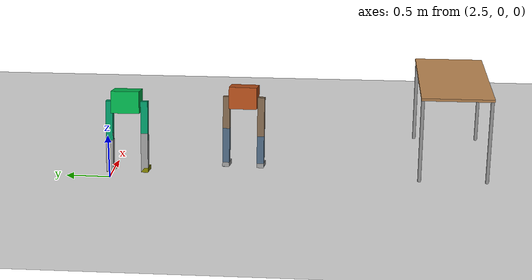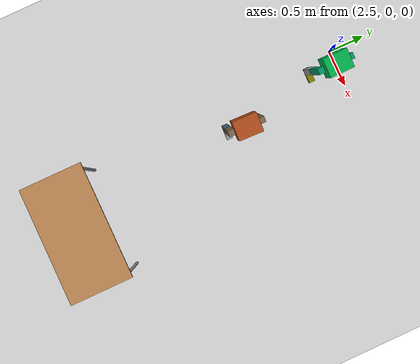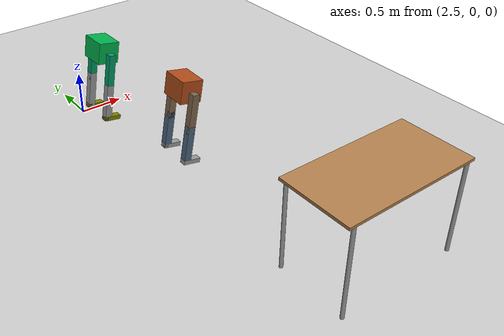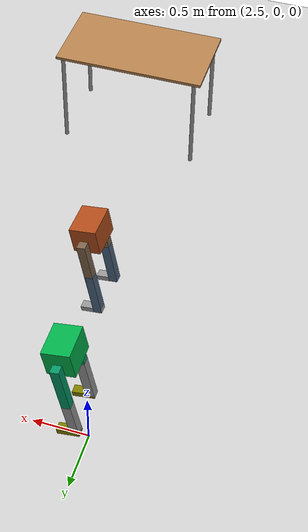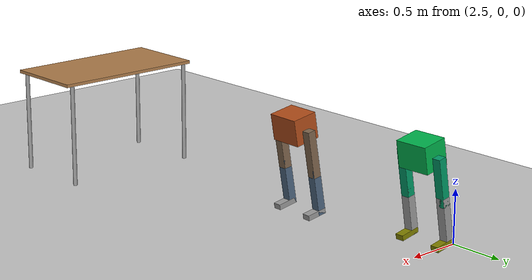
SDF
<sdf version="1.6">
 <world name="default">
  <model name="ground_plane">
   <static>1</static>
   <link name="link">
    <collision name="collision">
     <geometry><plane><normal>0 0 1</normal><size>100 100</size></plane></geometry>
     <surface><friction><ode><mu>100</mu><mu2>50</mu2></ode></friction></surface>
    </collision>
    <visual name="visual">
     <cast_shadows>0</cast_shadows>
     <geometry><plane><normal>0 0 1</normal><size>100 100</size></plane></geometry>
     <material>
      <script><uri>file://media/materials/scripts/gazebo.material</uri><name>Gazebo/Grey</name></script>
     </material>
    </visual>
   </link>
  </model>
  <model name="table">
   <static>1</static>
   <link name="link">
    <collision name="surface">
     <pose>0 0 1 0 -0 0</pose>
     <geometry><box><size>1.5 0.8 0.03</size></box></geometry>
     <surface><friction><ode><mu>0.6</mu><mu2>0.6</mu2></ode></friction></surface>
    </collision>
    <visual name="visual1">
     <pose>0 0 1 0 -0 0</pose>
     <geometry><box><size>1.5 0.8 0.03</size></box></geometry>
     <material>
      <script><uri>file://media/materials/scripts/gazebo.material</uri><name>Gazebo/Wood</name></script>
     </material>
    </visual>
    <collision name="front_left_leg">
     <pose>0.68 0.38 0.5 0 -0 0</pose>
     <geometry><cylinder><radius>0.02</radius><length>1</length></cylinder></geometry>
    </collision>
    <visual name="front_left_leg">
     <pose>0.68 0.38 0.5 0 -0 0</pose>
     <geometry><cylinder><radius>0.02</radius><length>1</length></cylinder></geometry>
     <material>
      <script><uri>file://media/materials/scripts/gazebo.material</uri><name>Gazebo/Grey</name></script>
     </material>
    </visual>
    <collision name="front_right_leg">
     <pose>0.68 -0.38 0.5 0 -0 0</pose>
     <geometry><cylinder><radius>0.02</radius><length>1</length></cylinder></geometry>
    </collision>
    <visual name="front_right_leg">
     <pose>0.68 -0.38 0.5 0 -0 0</pose>
     <geometry><cylinder><radius>0.02</radius><length>1</length></cylinder></geometry>
     <material>
      <script><uri>file://media/materials/scripts/gazebo.material</uri><name>Gazebo/Grey</name></script>
     </material>
    </visual>
    <collision name="back_right_leg">
     <pose>-0.68 -0.38 0.5 0 -0 0</pose>
     <geometry><cylinder><radius>0.02</radius><length>1</length></cylinder></geometry>
    </collision>
    <visual name="back_right_leg">
     <pose>-0.68 -0.38 0.5 0 -0 0</pose>
     <geometry><cylinder><radius>0.02</radius><length>1</length></cylinder></geometry>
     <material>
      <script><uri>file://media/materials/scripts/gazebo.material</uri><name>Gazebo/Grey</name></script>
     </material>
    </visual>
    <collision name="back_left_leg">
     <pose>-0.68 0.38 0.5 0 -0 0</pose>
     <geometry><cylinder><radius>0.02</radius><length>1</length></cylinder></geometry>
    </collision>
    <visual name="back_left_leg">
     <pose>-0.68 0.38 0.5 0 -0 0</pose>
     <geometry><cylinder><radius>0.02</radius><length>1</length></cylinder></geometry>
     <material>
      <script><uri>file://media/materials/scripts/gazebo.material</uri><name>Gazebo/Grey</name></script>
     </material>
    </visual>
   </link>
   <pose>3.30366 -3.89414 0 0 -0 0</pose>
  </model>
  <model name="humanoid">
   <link name="link_0">
    <pose>0.043928 -0.199999 -0.333571 0 -0 0</pose>
    <inertial>
     <mass>1</mass>
     <inertia>
      <ixx>0.166667</ixx>
      <ixy>0</ixy>
      <ixz>0</ixz>
      <iyy>0.166667</iyy>
      <iyz>0</iyz>
      <izz>0.166667</izz>
     </inertia>
    </inertial>
    <visual name="visual">
     <geometry><box><size>0.2 0.08 0.05</size></box></geometry>
     <material>
      <lighting>1</lighting>
      <script><uri>file://media/materials/scripts/gazebo.material</uri><name>Gazebo/Grey</name></script>
      <ambient>0.3 0.3 0.3 1</ambient>
      <diffuse>0.7 0.7 0.7 1</diffuse>
      <specular>0.01 0.01 0.01 1</specular>
      <emissive>0 0 0 1</emissive>
      <shader type="vertex"><normal_map>__default__</normal_map></shader>
     </material>
    </visual>
    <collision name="collision">
     <geometry><box><size>0.2 0.08 0.05</size></box></geometry>
     <surface>
      <friction>
       <ode><mu>1</mu><mu2>1</mu2><fdir1>0 0 0</fdir1><slip1>0</slip1><slip2>0</slip2></ode>
       <torsional>
        <coefficient>1</coefficient>
        <patch_radius>0</patch_radius>
        <surface_radius>0</surface_radius>
        <use_patch_radius>1</use_patch_radius>
        <ode><slip>0</slip></ode>
       </torsional>
      </friction>
      <bounce><restitution_coefficient>0</restitution_coefficient><threshold>1e+06</threshold></bounce>
      <contact>
       <collide_without_contact>0</collide_without_contact>
       <collide_without_contact_bitmask>1</collide_without_contact_bitmask>
       <collide_bitmask>1</collide_bitmask>
       <ode>
        <soft_cfm>0</soft_cfm>
        <soft_erp>0.2</soft_erp>
        <kp>1e+13</kp>
        <kd>1</kd>
        <max_vel>0.01</max_vel>
        <min_depth>0</min_depth>
       </ode>
       <bullet>
        <split_impulse>1</split_impulse>
        <split_impulse_penetration_threshold>-0.01</split_impulse_penetration_threshold>
        <soft_cfm>0</soft_cfm>
        <soft_erp>0.2</soft_erp>
        <kp>1e+13</kp>
        <kd>1</kd>
       </bullet>
      </contact>
     </surface>
    </collision>
   </link>
   <link name="link_0_clone">
    <pose>0.043928 0.200001 -0.333571 0 -0 0</pose>
    <inertial>
     <mass>1</mass>
     <inertia>
      <ixx>0.166667</ixx>
      <ixy>0</ixy>
      <ixz>0</ixz>
      <iyy>0.166667</iyy>
      <iyz>0</iyz>
      <izz>0.166667</izz>
     </inertia>
    </inertial>
    <visual name="visual">
     <geometry><box><size>0.2 0.08 0.05</size></box></geometry>
     <material>
      <lighting>1</lighting>
      <script><uri>file://media/materials/scripts/gazebo.material</uri><name>Gazebo/Grey</name></script>
      <ambient>0.3 0.3 0.3 1</ambient>
      <diffuse>0.7 0.7 0.7 1</diffuse>
      <specular>0.01 0.01 0.01 1</specular>
      <emissive>0 0 0 1</emissive>
      <shader type="vertex"><normal_map>__default__</normal_map></shader>
     </material>
    </visual>
    <collision name="collision">
     <geometry><box><size>0.2 0.08 0.05</size></box></geometry>
     <surface>
      <friction>
       <ode><mu>1</mu><mu2>1</mu2><fdir1>0 0 0</fdir1><slip1>0</slip1><slip2>0</slip2></ode>
       <torsional>
        <coefficient>1</coefficient>
        <patch_radius>0</patch_radius>
        <surface_radius>0</surface_radius>
        <use_patch_radius>1</use_patch_radius>
        <ode><slip>0</slip></ode>
       </torsional>
      </friction>
      <bounce><restitution_coefficient>0</restitution_coefficient><threshold>1e+06</threshold></bounce>
      <contact>
       <collide_without_contact>0</collide_without_contact>
       <collide_without_contact_bitmask>1</collide_without_contact_bitmask>
       <collide_bitmask>1</collide_bitmask>
       <ode>
        <soft_cfm>0</soft_cfm>
        <soft_erp>0.2</soft_erp>
        <kp>1e+13</kp>
        <kd>1</kd>
        <max_vel>0.01</max_vel>
        <min_depth>0</min_depth>
       </ode>
       <bullet>
        <split_impulse>1</split_impulse>
        <split_impulse_penetration_threshold>-0.01</split_impulse_penetration_threshold>
        <soft_cfm>0</soft_cfm>
        <soft_erp>0.2</soft_erp>
        <kp>1e+13</kp>
        <kd>1</kd>
       </bullet>
      </contact>
     </surface>
    </collision>
   </link>
   <link name="link_0_clone_0">
    <pose>-0.016072 -0.199999 -0.133571 0 -0 0</pose>
    <inertial>
     <mass>1</mass>
     <inertia>
      <ixx>0.166667</ixx>
      <ixy>0</ixy>
      <ixz>0</ixz>
      <iyy>0.166667</iyy>
      <iyz>0</iyz>
      <izz>0.166667</izz>
     </inertia>
    </inertial>
    <visual name="visual">
     <geometry><box><size>0.08 0.08 0.45</size></box></geometry>
     <material>
      <lighting>1</lighting>
      <script><uri>file://media/materials/scripts/gazebo.material</uri><name>Gazebo/Grey</name></script>
      <ambient>0.3 0.4 0.5 1</ambient>
      <diffuse>0.7 0.7 0.7 1</diffuse>
      <specular>0.01 0.01 0.01 1</specular>
      <emissive>0 0 0 1</emissive>
      <shader type="vertex"><normal_map>__default__</normal_map></shader>
     </material>
    </visual>
    <collision name="collision">
     <geometry><box><size>0.08 0.08 0.45</size></box></geometry>
     <surface>
      <friction>
       <ode><mu>1</mu><mu2>1</mu2><fdir1>0 0 0</fdir1><slip1>0</slip1><slip2>0</slip2></ode>
       <torsional>
        <coefficient>1</coefficient>
        <patch_radius>0</patch_radius>
        <surface_radius>0</surface_radius>
        <use_patch_radius>1</use_patch_radius>
        <ode><slip>0</slip></ode>
       </torsional>
      </friction>
      <bounce><restitution_coefficient>0</restitution_coefficient><threshold>1e+06</threshold></bounce>
      <contact>
       <collide_without_contact>0</collide_without_contact>
       <collide_without_contact_bitmask>1</collide_without_contact_bitmask>
       <collide_bitmask>1</collide_bitmask>
       <ode>
        <soft_cfm>0</soft_cfm>
        <soft_erp>0.2</soft_erp>
        <kp>1e+13</kp>
        <kd>1</kd>
        <max_vel>0.01</max_vel>
        <min_depth>0</min_depth>
       </ode>
       <bullet>
        <split_impulse>1</split_impulse>
        <split_impulse_penetration_threshold>-0.01</split_impulse_penetration_threshold>
        <soft_cfm>0</soft_cfm>
        <soft_erp>0.2</soft_erp>
        <kp>1e+13</kp>
        <kd>1</kd>
       </bullet>
      </contact>
     </surface>
    </collision>
   </link>
   <link name="link_0_clone_0_clone">
    <pose>-0.016072 0.200001 -0.133571 0 -0 0</pose>
    <inertial>
     <mass>1</mass>
     <inertia>
      <ixx>0.166667</ixx>
      <ixy>0</ixy>
      <ixz>0</ixz>
      <iyy>0.166667</iyy>
      <iyz>0</iyz>
      <izz>0.166667</izz>
     </inertia>
    </inertial>
    <visual name="visual">
     <geometry><box><size>0.08 0.08 0.45</size></box></geometry>
     <material>
      <lighting>1</lighting>
      <script><uri>file://media/materials/scripts/gazebo.material</uri><name>Gazebo/Grey</name></script>
      <ambient>0.3 0.4 0.5 1</ambient>
      <diffuse>0.7 0.7 0.7 1</diffuse>
      <specular>0.01 0.01 0.01 1</specular>
      <emissive>0 0 0 1</emissive>
      <shader type="vertex"><normal_map>__default__</normal_map></shader>
     </material>
    </visual>
    <collision name="collision">
     <geometry><box><size>0.08 0.08 0.45</size></box></geometry>
     <surface>
      <friction>
       <ode><mu>1</mu><mu2>1</mu2><fdir1>0 0 0</fdir1><slip1>0</slip1><slip2>0</slip2></ode>
       <torsional>
        <coefficient>1</coefficient>
        <patch_radius>0</patch_radius>
        <surface_radius>0</surface_radius>
        <use_patch_radius>1</use_patch_radius>
        <ode><slip>0</slip></ode>
       </torsional>
      </friction>
      <bounce><restitution_coefficient>0</restitution_coefficient><threshold>1e+06</threshold></bounce>
      <contact>
       <collide_without_contact>0</collide_without_contact>
       <collide_without_contact_bitmask>1</collide_without_contact_bitmask>
       <collide_bitmask>1</collide_bitmask>
       <ode>
        <soft_cfm>0</soft_cfm>
        <soft_erp>0.2</soft_erp>
        <kp>1e+13</kp>
        <kd>1</kd>
        <max_vel>0.01</max_vel>
        <min_depth>0</min_depth>
       </ode>
       <bullet>
        <split_impulse>1</split_impulse>
        <split_impulse_penetration_threshold>-0.01</split_impulse_penetration_threshold>
        <soft_cfm>0</soft_cfm>
        <soft_erp>0.2</soft_erp>
        <kp>1e+13</kp>
        <kd>1</kd>
       </bullet>
      </contact>
     </surface>
    </collision>
   </link>
   <link name="link_0_clone_0_clone_0">
    <pose>-0.016072 -0.199999 0.236429 0 -0 0</pose>
    <inertial>
     <mass>1</mass>
     <inertia>
      <ixx>0.166667</ixx>
      <ixy>0</ixy>
      <ixz>0</ixz>
      <iyy>0.166667</iyy>
      <iyz>0</iyz>
      <izz>0.166667</izz>
     </inertia>
    </inertial>
    <visual name="visual">
     <geometry><box><size>0.08 0.08 0.45</size></box></geometry>
     <material>
      <lighting>1</lighting>
      <script><uri>file://media/materials/scripts/gazebo.material</uri><name>Gazebo/Grey</name></script>
      <ambient>0.5 0.4 0.3 1</ambient>
      <diffuse>0.7 0.7 0.7 1</diffuse>
      <specular>0.01 0.01 0.01 1</specular>
      <emissive>0 0 0 1</emissive>
      <shader type="vertex"><normal_map>__default__</normal_map></shader>
     </material>
    </visual>
    <collision name="collision">
     <geometry><box><size>0.08 0.08 0.45</size></box></geometry>
     <surface>
      <friction>
       <ode><mu>1</mu><mu2>1</mu2><fdir1>0 0 0</fdir1><slip1>0</slip1><slip2>0</slip2></ode>
       <torsional>
        <coefficient>1</coefficient>
        <patch_radius>0</patch_radius>
        <surface_radius>0</surface_radius>
        <use_patch_radius>1</use_patch_radius>
        <ode><slip>0</slip></ode>
       </torsional>
      </friction>
      <bounce><restitution_coefficient>0</restitution_coefficient><threshold>1e+06</threshold></bounce>
      <contact>
       <collide_without_contact>0</collide_without_contact>
       <collide_without_contact_bitmask>1</collide_without_contact_bitmask>
       <collide_bitmask>1</collide_bitmask>
       <ode>
        <soft_cfm>0</soft_cfm>
        <soft_erp>0.2</soft_erp>
        <kp>1e+13</kp>
        <kd>1</kd>
        <max_vel>0.01</max_vel>
        <min_depth>0</min_depth>
       </ode>
       <bullet>
        <split_impulse>1</split_impulse>
        <split_impulse_penetration_threshold>-0.01</split_impulse_penetration_threshold>
        <soft_cfm>0</soft_cfm>
        <soft_erp>0.2</soft_erp>
        <kp>1e+13</kp>
        <kd>1</kd>
       </bullet>
      </contact>
     </surface>
    </collision>
   </link>
   <link name="link_0_clone_0_clone_0_clone">
    <pose>-0.016072 0.200001 0.236429 0 -0 0</pose>
    <inertial>
     <mass>1</mass>
     <inertia>
      <ixx>0.166667</ixx>
      <ixy>0</ixy>
      <ixz>0</ixz>
      <iyy>0.166667</iyy>
      <iyz>0</iyz>
      <izz>0.166667</izz>
     </inertia>
    </inertial>
    <visual name="visual">
     <geometry><box><size>0.08 0.08 0.45</size></box></geometry>
     <material>
      <lighting>1</lighting>
      <script><uri>file://media/materials/scripts/gazebo.material</uri><name>Gazebo/Grey</name></script>
      <ambient>0.5 0.4 0.3 1</ambient>
      <diffuse>0.7 0.7 0.7 1</diffuse>
      <specular>0.01 0.01 0.01 1</specular>
      <emissive>0 0 0 1</emissive>
      <shader type="vertex"><normal_map>__default__</normal_map></shader>
     </material>
    </visual>
    <collision name="collision">
     <geometry><box><size>0.08 0.08 0.45</size></box></geometry>
     <surface>
      <friction>
       <ode><mu>1</mu><mu2>1</mu2><fdir1>0 0 0</fdir1><slip1>0</slip1><slip2>0</slip2></ode>
       <torsional>
        <coefficient>1</coefficient>
        <patch_radius>0</patch_radius>
        <surface_radius>0</surface_radius>
        <use_patch_radius>1</use_patch_radius>
        <ode><slip>0</slip></ode>
       </torsional>
      </friction>
      <bounce><restitution_coefficient>0</restitution_coefficient><threshold>1e+06</threshold></bounce>
      <contact>
       <collide_without_contact>0</collide_without_contact>
       <collide_without_contact_bitmask>1</collide_without_contact_bitmask>
       <collide_bitmask>1</collide_bitmask>
       <ode>
        <soft_cfm>0</soft_cfm>
        <soft_erp>0.2</soft_erp>
        <kp>1e+13</kp>
        <kd>1</kd>
        <max_vel>0.01</max_vel>
        <min_depth>0</min_depth>
       </ode>
       <bullet>
        <split_impulse>1</split_impulse>
        <split_impulse_penetration_threshold>-0.01</split_impulse_penetration_threshold>
        <soft_cfm>0</soft_cfm>
        <soft_erp>0.2</soft_erp>
        <kp>1e+13</kp>
        <kd>1</kd>
       </bullet>
      </contact>
     </surface>
    </collision>
   </link>
   <link name="link_2">
    <pose>-0.023572 1e-06 0.461429 0 -0 0</pose>
    <inertial>
     <mass>1</mass>
     <inertia>
      <ixx>0.166667</ixx>
      <ixy>0</ixy>
      <ixz>0</ixz>
      <iyy>0.166667</iyy>
      <iyz>0</iyz>
      <izz>0.166667</izz>
     </inertia>
    </inertial>
    <visual name="visual">
     <geometry><box><size>0.25 0.32 0.25</size></box></geometry>
     <material>
      <lighting>1</lighting>
      <script><uri>file://media/materials/scripts/gazebo.material</uri><name>Gazebo/Grey</name></script>
      <ambient>0.7 0.3 0.1 1</ambient>
      <diffuse>0.7 0.7 0.7 1</diffuse>
      <specular>0.01 0.01 0.01 1</specular>
      <emissive>0 0 0 1</emissive>
      <shader type="vertex"><normal_map>__default__</normal_map></shader>
     </material>
    </visual>
    <collision name="collision">
     <geometry><box><size>0.25 0.32 0.25</size></box></geometry>
     <surface>
      <friction>
       <ode><mu>1</mu><mu2>1</mu2><fdir1>0 0 0</fdir1><slip1>0</slip1><slip2>0</slip2></ode>
       <torsional>
        <coefficient>1</coefficient>
        <patch_radius>0</patch_radius>
        <surface_radius>0</surface_radius>
        <use_patch_radius>1</use_patch_radius>
        <ode><slip>0</slip></ode>
       </torsional>
      </friction>
      <bounce><restitution_coefficient>0</restitution_coefficient><threshold>1e+06</threshold></bounce>
      <contact>
       <collide_without_contact>0</collide_without_contact>
       <collide_without_contact_bitmask>1</collide_without_contact_bitmask>
       <collide_bitmask>1</collide_bitmask>
       <ode>
        <soft_cfm>0</soft_cfm>
        <soft_erp>0.2</soft_erp>
        <kp>1e+13</kp>
        <kd>1</kd>
        <max_vel>0.01</max_vel>
        <min_depth>0</min_depth>
       </ode>
       <bullet>
        <split_impulse>1</split_impulse>
        <split_impulse_penetration_threshold>-0.01</split_impulse_penetration_threshold>
        <soft_cfm>0</soft_cfm>
        <soft_erp>0.2</soft_erp>
        <kp>1e+13</kp>
        <kd>1</kd>
       </bullet>
      </contact>
     </surface>
    </collision>
   </link>
   <joint name="link_0_clone_0_JOINT_12" type="revolute">
    <parent>link_0_clone_0</parent>
    <child>link_0</child>
    <pose>-0.05 0 0 0 -0 0</pose>
    <axis>
     <xyz>0 1 0</xyz>
     <use_parent_model_frame>0</use_parent_model_frame>
     <limit>
      <lower>-1.79769e+308</lower>
      <upper>1.79769e+308</upper>
      <effort>-1</effort>
      <velocity>-1</velocity>
     </limit>
     <dynamics>
      <spring_reference>0</spring_reference>
      <spring_stiffness>0</spring_stiffness>
      <damping>0</damping>
      <friction>0</friction>
     </dynamics>
    </axis>
    <physics>
     <ode><limit><cfm>0</cfm><erp>0.2</erp></limit><suspension><cfm>0</cfm><erp>0.2</erp></suspension></ode>
    </physics>
   </joint>
   <joint name="link_0_clone_0_clone_0_JOINT_8" type="revolute">
    <parent>link_0_clone_0_clone_0</parent>
    <child>link_0_clone_0</child>
    <pose>0 0 0.225 0 -0 0</pose>
    <axis>
     <xyz>0 1 0</xyz>
     <use_parent_model_frame>0</use_parent_model_frame>
     <limit>
      <lower>-1.79769e+308</lower>
      <upper>1.79769e+308</upper>
      <effort>-1</effort>
      <velocity>-1</velocity>
     </limit>
     <dynamics>
      <spring_reference>0</spring_reference>
      <spring_stiffness>0</spring_stiffness>
      <damping>0</damping>
      <friction>0</friction>
     </dynamics>
    </axis>
    <physics>
     <ode><limit><cfm>0</cfm><erp>0.2</erp></limit><suspension><cfm>0</cfm><erp>0.2</erp></suspension></ode>
    </physics>
   </joint>
   <joint name="link_0_clone_0_clone_0_clone_JOINT_10" type="revolute">
    <parent>link_0_clone_0_clone_0_clone</parent>
    <child>link_0_clone_0_clone</child>
    <pose>0 0 0.225 0 -0 0</pose>
    <axis>
     <xyz>0 -1 0</xyz>
     <use_parent_model_frame>0</use_parent_model_frame>
     <limit>
      <lower>-1.79769e+308</lower>
      <upper>1.79769e+308</upper>
      <effort>-1</effort>
      <velocity>-1</velocity>
     </limit>
     <dynamics>
      <spring_reference>0</spring_reference>
      <spring_stiffness>0</spring_stiffness>
      <damping>0</damping>
      <friction>0</friction>
     </dynamics>
    </axis>
    <physics>
     <ode><limit><cfm>0</cfm><erp>0.2</erp></limit><suspension><cfm>0</cfm><erp>0.2</erp></suspension></ode>
    </physics>
   </joint>
   <joint name="link_0_clone_0_clone_JOINT_11" type="revolute">
    <parent>link_0_clone_0_clone</parent>
    <child>link_0_clone</child>
    <pose>-0.05 0 0 0 -0 0</pose>
    <axis>
     <xyz>0 -1 0</xyz>
     <use_parent_model_frame>0</use_parent_model_frame>
     <limit>
      <lower>-1.79769e+308</lower>
      <upper>1.79769e+308</upper>
      <effort>-1</effort>
      <velocity>-1</velocity>
     </limit>
     <dynamics>
      <spring_reference>0</spring_reference>
      <spring_stiffness>0</spring_stiffness>
      <damping>0</damping>
      <friction>0</friction>
     </dynamics>
    </axis>
    <physics>
     <ode><limit><cfm>0</cfm><erp>0.2</erp></limit><suspension><cfm>0</cfm><erp>0.2</erp></suspension></ode>
    </physics>
   </joint>
   <joint name="link_2_JOINT_6" type="revolute">
    <parent>link_2</parent>
    <child>link_0_clone_0_clone_0</child>
    <pose>0 0 0.225 0 -0 0</pose>
    <axis>
     <xyz>0 1 0</xyz>
     <use_parent_model_frame>0</use_parent_model_frame>
     <limit><lower>-1e+16</lower><upper>1e+16</upper><effort>-1</effort><velocity>-1</velocity></limit>
     <dynamics>
      <spring_reference>0</spring_reference>
      <spring_stiffness>0</spring_stiffness>
      <damping>0</damping>
      <friction>0</friction>
     </dynamics>
    </axis>
    <physics>
     <ode><limit><cfm>0</cfm><erp>0.2</erp></limit><suspension><cfm>0</cfm><erp>0.2</erp></suspension></ode>
    </physics>
   </joint>
   <joint name="link_2_JOINT_7" type="revolute">
    <parent>link_2</parent>
    <child>link_0_clone_0_clone_0_clone</child>
    <pose>0 0 0.225 0 -0 0</pose>
    <axis>
     <xyz>0 -1 0</xyz>
     <use_parent_model_frame>0</use_parent_model_frame>
     <limit>
      <lower>-1.79769e+308</lower>
      <upper>1.79769e+308</upper>
      <effort>-1</effort>
      <velocity>-1</velocity>
     </limit>
     <dynamics>
      <spring_reference>0</spring_reference>
      <spring_stiffness>0</spring_stiffness>
      <damping>0</damping>
      <friction>0</friction>
     </dynamics>
    </axis>
    <physics>
     <ode><limit><cfm>0</cfm><erp>0.2</erp></limit><suspension><cfm>0</cfm><erp>0.2</erp></suspension></ode>
    </physics>
   </joint>
   <static>0</static>
   <pose>2.92632 -1.49699 0.378179 0 0.175326 -0.035368</pose>
  </model>
  <model name="humanoid_0">
   <link name="link_0">
    <pose>0.043928 -0.199999 -0.333571 0 -0 0</pose>
    <inertial>
     <mass>1</mass>
     <inertia>
      <ixx>0.166667</ixx>
      <ixy>0</ixy>
      <ixz>0</ixz>
      <iyy>0.166667</iyy>
      <iyz>0</iyz>
      <izz>0.166667</izz>
     </inertia>
    </inertial>
    <visual name="visual">
     <geometry><box><size>0.2 0.08 0.05</size></box></geometry>
     <material>
      <lighting>1</lighting>
      <script><uri>file://media/materials/scripts/gazebo.material</uri><name>Gazebo/Grey</name></script>
      <ambient>0.5 0.5 0 1</ambient>
      <diffuse>0.7 0.7 0.7 1</diffuse>
      <specular>0.01 0.01 0.01 1</specular>
      <emissive>0 0 0 1</emissive>
      <shader type="vertex"><normal_map>__default__</normal_map></shader>
     </material>
    </visual>
    <collision name="collision">
     <geometry><box><size>0.2 0.08 0.05</size></box></geometry>
     <surface>
      <friction>
       <ode><mu>1</mu><mu2>1</mu2><fdir1>0 0 0</fdir1><slip1>0</slip1><slip2>0</slip2></ode>
       <torsional>
        <coefficient>1</coefficient>
        <patch_radius>0</patch_radius>
        <surface_radius>0</surface_radius>
        <use_patch_radius>1</use_patch_radius>
        <ode><slip>0</slip></ode>
       </torsional>
      </friction>
      <bounce><restitution_coefficient>0</restitution_coefficient><threshold>1e+06</threshold></bounce>
      <contact>
       <collide_without_contact>0</collide_without_contact>
       <collide_without_contact_bitmask>1</collide_without_contact_bitmask>
       <collide_bitmask>1</collide_bitmask>
       <ode>
        <soft_cfm>0</soft_cfm>
        <soft_erp>0.2</soft_erp>
        <kp>1e+13</kp>
        <kd>1</kd>
        <max_vel>0.01</max_vel>
        <min_depth>0</min_depth>
       </ode>
       <bullet>
        <split_impulse>1</split_impulse>
        <split_impulse_penetration_threshold>-0.01</split_impulse_penetration_threshold>
        <soft_cfm>0</soft_cfm>
        <soft_erp>0.2</soft_erp>
        <kp>1e+13</kp>
        <kd>1</kd>
       </bullet>
      </contact>
     </surface>
    </collision>
   </link>
   <link name="link_0_clone">
    <pose>0.043928 0.200001 -0.333571 0 -0 0</pose>
    <inertial>
     <mass>1</mass>
     <inertia>
      <ixx>0.166667</ixx>
      <ixy>0</ixy>
      <ixz>0</ixz>
      <iyy>0.166667</iyy>
      <iyz>0</iyz>
      <izz>0.166667</izz>
     </inertia>
    </inertial>
    <visual name="visual">
     <geometry><box><size>0.2 0.08 0.05</size></box></geometry>
     <material>
      <lighting>1</lighting>
      <script><uri>file://media/materials/scripts/gazebo.material</uri><name>Gazebo/Grey</name></script>
      <ambient>0.5 0.5 0 1</ambient>
      <diffuse>0.7 0.7 0.7 1</diffuse>
      <specular>0.01 0.01 0.01 1</specular>
      <emissive>0 0 0 1</emissive>
      <shader type="vertex"><normal_map>__default__</normal_map></shader>
     </material>
    </visual>
    <collision name="collision">
     <geometry><box><size>0.2 0.08 0.05</size></box></geometry>
     <surface>
      <friction>
       <ode><mu>1</mu><mu2>1</mu2><fdir1>0 0 0</fdir1><slip1>0</slip1><slip2>0</slip2></ode>
       <torsional>
        <coefficient>1</coefficient>
        <patch_radius>0</patch_radius>
        <surface_radius>0</surface_radius>
        <use_patch_radius>1</use_patch_radius>
        <ode><slip>0</slip></ode>
       </torsional>
      </friction>
      <bounce><restitution_coefficient>0</restitution_coefficient><threshold>1e+06</threshold></bounce>
      <contact>
       <collide_without_contact>0</collide_without_contact>
       <collide_without_contact_bitmask>1</collide_without_contact_bitmask>
       <collide_bitmask>1</collide_bitmask>
       <ode>
        <soft_cfm>0</soft_cfm>
        <soft_erp>0.2</soft_erp>
        <kp>1e+13</kp>
        <kd>1</kd>
        <max_vel>0.01</max_vel>
        <min_depth>0</min_depth>
       </ode>
       <bullet>
        <split_impulse>1</split_impulse>
        <split_impulse_penetration_threshold>-0.01</split_impulse_penetration_threshold>
        <soft_cfm>0</soft_cfm>
        <soft_erp>0.2</soft_erp>
        <kp>1e+13</kp>
        <kd>1</kd>
       </bullet>
      </contact>
     </surface>
    </collision>
   </link>
   <link name="link_0_clone_0">
    <pose>-0.016072 -0.199999 -0.133571 0 -0 0</pose>
    <inertial>
     <mass>1</mass>
     <inertia>
      <ixx>0.166667</ixx>
      <ixy>0</ixy>
      <ixz>0</ixz>
      <iyy>0.166667</iyy>
      <iyz>0</iyz>
      <izz>0.166667</izz>
     </inertia>
    </inertial>
    <visual name="visual">
     <geometry><box><size>0.08 0.08 0.45</size></box></geometry>
     <material>
      <lighting>1</lighting>
      <script><uri>file://media/materials/scripts/gazebo.material</uri><name>Gazebo/Grey</name></script>
      <ambient>0.3 0.3 0.3 1</ambient>
      <diffuse>0.7 0.7 0.7 1</diffuse>
      <specular>0.01 0.01 0.01 1</specular>
      <emissive>0 0 0 1</emissive>
      <shader type="vertex"><normal_map>__default__</normal_map></shader>
     </material>
    </visual>
    <collision name="collision">
     <geometry><box><size>0.08 0.08 0.45</size></box></geometry>
     <surface>
      <friction>
       <ode><mu>1</mu><mu2>1</mu2><fdir1>0 0 0</fdir1><slip1>0</slip1><slip2>0</slip2></ode>
       <torsional>
        <coefficient>1</coefficient>
        <patch_radius>0</patch_radius>
        <surface_radius>0</surface_radius>
        <use_patch_radius>1</use_patch_radius>
        <ode><slip>0</slip></ode>
       </torsional>
      </friction>
      <bounce><restitution_coefficient>0</restitution_coefficient><threshold>1e+06</threshold></bounce>
      <contact>
       <collide_without_contact>0</collide_without_contact>
       <collide_without_contact_bitmask>1</collide_without_contact_bitmask>
       <collide_bitmask>1</collide_bitmask>
       <ode>
        <soft_cfm>0</soft_cfm>
        <soft_erp>0.2</soft_erp>
        <kp>1e+13</kp>
        <kd>1</kd>
        <max_vel>0.01</max_vel>
        <min_depth>0</min_depth>
       </ode>
       <bullet>
        <split_impulse>1</split_impulse>
        <split_impulse_penetration_threshold>-0.01</split_impulse_penetration_threshold>
        <soft_cfm>0</soft_cfm>
        <soft_erp>0.2</soft_erp>
        <kp>1e+13</kp>
        <kd>1</kd>
       </bullet>
      </contact>
     </surface>
    </collision>
   </link>
   <link name="link_0_clone_0_clone">
    <pose>-0.016072 0.200001 -0.133571 0 -0 0</pose>
    <inertial>
     <mass>1</mass>
     <inertia>
      <ixx>0.166667</ixx>
      <ixy>0</ixy>
      <ixz>0</ixz>
      <iyy>0.166667</iyy>
      <iyz>0</iyz>
      <izz>0.166667</izz>
     </inertia>
    </inertial>
    <visual name="visual">
     <geometry><box><size>0.08 0.08 0.45</size></box></geometry>
     <material>
      <lighting>1</lighting>
      <script><uri>file://media/materials/scripts/gazebo.material</uri><name>Gazebo/Grey</name></script>
      <ambient>0.3 0.3 0.3 1</ambient>
      <diffuse>0.7 0.7 0.7 1</diffuse>
      <specular>0.01 0.01 0.01 1</specular>
      <emissive>0 0 0 1</emissive>
      <shader type="vertex"><normal_map>__default__</normal_map></shader>
     </material>
    </visual>
    <collision name="collision">
     <geometry><box><size>0.08 0.08 0.45</size></box></geometry>
     <surface>
      <friction>
       <ode><mu>1</mu><mu2>1</mu2><fdir1>0 0 0</fdir1><slip1>0</slip1><slip2>0</slip2></ode>
       <torsional>
        <coefficient>1</coefficient>
        <patch_radius>0</patch_radius>
        <surface_radius>0</surface_radius>
        <use_patch_radius>1</use_patch_radius>
        <ode><slip>0</slip></ode>
       </torsional>
      </friction>
      <bounce><restitution_coefficient>0</restitution_coefficient><threshold>1e+06</threshold></bounce>
      <contact>
       <collide_without_contact>0</collide_without_contact>
       <collide_without_contact_bitmask>1</collide_without_contact_bitmask>
       <collide_bitmask>1</collide_bitmask>
       <ode>
        <soft_cfm>0</soft_cfm>
        <soft_erp>0.2</soft_erp>
        <kp>1e+13</kp>
        <kd>1</kd>
        <max_vel>0.01</max_vel>
        <min_depth>0</min_depth>
       </ode>
       <bullet>
        <split_impulse>1</split_impulse>
        <split_impulse_penetration_threshold>-0.01</split_impulse_penetration_threshold>
        <soft_cfm>0</soft_cfm>
        <soft_erp>0.2</soft_erp>
        <kp>1e+13</kp>
        <kd>1</kd>
       </bullet>
      </contact>
     </surface>
    </collision>
   </link>
   <link name="link_0_clone_0_clone_0">
    <pose>-0.016072 -0.199999 0.236429 0 -0 0</pose>
    <inertial>
     <mass>1</mass>
     <inertia>
      <ixx>0.166667</ixx>
      <ixy>0</ixy>
      <ixz>0</ixz>
      <iyy>0.166667</iyy>
      <iyz>0</iyz>
      <izz>0.166667</izz>
     </inertia>
    </inertial>
    <visual name="visual">
     <geometry><box><size>0.08 0.08 0.45</size></box></geometry>
     <material>
      <lighting>1</lighting>
      <script><uri>file://media/materials/scripts/gazebo.material</uri><name>Gazebo/Grey</name></script>
      <ambient>0 0.6 0.4 1</ambient>
      <diffuse>0.7 0.7 0.7 1</diffuse>
      <specular>0.01 0.01 0.01 1</specular>
      <emissive>0 0 0 1</emissive>
      <shader type="vertex"><normal_map>__default__</normal_map></shader>
     </material>
    </visual>
    <collision name="collision">
     <geometry><box><size>0.08 0.08 0.45</size></box></geometry>
     <surface>
      <friction>
       <ode><mu>1</mu><mu2>1</mu2><fdir1>0 0 0</fdir1><slip1>0</slip1><slip2>0</slip2></ode>
       <torsional>
        <coefficient>1</coefficient>
        <patch_radius>0</patch_radius>
        <surface_radius>0</surface_radius>
        <use_patch_radius>1</use_patch_radius>
        <ode><slip>0</slip></ode>
       </torsional>
      </friction>
      <bounce><restitution_coefficient>0</restitution_coefficient><threshold>1e+06</threshold></bounce>
      <contact>
       <collide_without_contact>0</collide_without_contact>
       <collide_without_contact_bitmask>1</collide_without_contact_bitmask>
       <collide_bitmask>1</collide_bitmask>
       <ode>
        <soft_cfm>0</soft_cfm>
        <soft_erp>0.2</soft_erp>
        <kp>1e+13</kp>
        <kd>1</kd>
        <max_vel>0.01</max_vel>
        <min_depth>0</min_depth>
       </ode>
       <bullet>
        <split_impulse>1</split_impulse>
        <split_impulse_penetration_threshold>-0.01</split_impulse_penetration_threshold>
        <soft_cfm>0</soft_cfm>
        <soft_erp>0.2</soft_erp>
        <kp>1e+13</kp>
        <kd>1</kd>
       </bullet>
      </contact>
     </surface>
    </collision>
   </link>
   <link name="link_0_clone_0_clone_0_clone">
    <pose>-0.016072 0.200001 0.236429 0 -0 0</pose>
    <inertial>
     <mass>1</mass>
     <inertia>
      <ixx>0.166667</ixx>
      <ixy>0</ixy>
      <ixz>0</ixz>
      <iyy>0.166667</iyy>
      <iyz>0</iyz>
      <izz>0.166667</izz>
     </inertia>
    </inertial>
    <visual name="visual">
     <geometry><box><size>0.08 0.08 0.45</size></box></geometry>
     <material>
      <lighting>1</lighting>
      <script><uri>file://media/materials/scripts/gazebo.material</uri><name>Gazebo/Grey</name></script>
      <ambient>0 0.6 0.4 1</ambient>
      <diffuse>0.7 0.7 0.7 1</diffuse>
      <specular>0.01 0.01 0.01 1</specular>
      <emissive>0 0 0 1</emissive>
      <shader type="vertex"><normal_map>__default__</normal_map></shader>
     </material>
    </visual>
    <collision name="collision">
     <geometry><box><size>0.08 0.08 0.45</size></box></geometry>
     <surface>
      <friction>
       <ode><mu>1</mu><mu2>1</mu2><fdir1>0 0 0</fdir1><slip1>0</slip1><slip2>0</slip2></ode>
       <torsional>
        <coefficient>1</coefficient>
        <patch_radius>0</patch_radius>
        <surface_radius>0</surface_radius>
        <use_patch_radius>1</use_patch_radius>
        <ode><slip>0</slip></ode>
       </torsional>
      </friction>
      <bounce><restitution_coefficient>0</restitution_coefficient><threshold>1e+06</threshold></bounce>
      <contact>
       <collide_without_contact>0</collide_without_contact>
       <collide_without_contact_bitmask>1</collide_without_contact_bitmask>
       <collide_bitmask>1</collide_bitmask>
       <ode>
        <soft_cfm>0</soft_cfm>
        <soft_erp>0.2</soft_erp>
        <kp>1e+13</kp>
        <kd>1</kd>
        <max_vel>0.01</max_vel>
        <min_depth>0</min_depth>
       </ode>
       <bullet>
        <split_impulse>1</split_impulse>
        <split_impulse_penetration_threshold>-0.01</split_impulse_penetration_threshold>
        <soft_cfm>0</soft_cfm>
        <soft_erp>0.2</soft_erp>
        <kp>1e+13</kp>
        <kd>1</kd>
       </bullet>
      </contact>
     </surface>
    </collision>
   </link>
   <link name="link_2">
    <pose>-0.023572 1e-06 0.461429 0 -0 0</pose>
    <inertial>
     <mass>1</mass>
     <inertia>
      <ixx>0.166667</ixx>
      <ixy>0</ixy>
      <ixz>0</ixz>
      <iyy>0.166667</iyy>
      <iyz>0</iyz>
      <izz>0.166667</izz>
     </inertia>
    </inertial>
    <visual name="visual">
     <geometry><box><size>0.25 0.32 0.25</size></box></geometry>
     <material>
      <lighting>1</lighting>
      <script><uri>file://media/materials/scripts/gazebo.material</uri><name>Gazebo/Grey</name></script>
      <ambient>0 0.7 0.3 1</ambient>
      <diffuse>0.7 0.7 0.7 1</diffuse>
      <specular>0.01 0.01 0.01 1</specular>
      <emissive>0 0 0 1</emissive>
      <shader type="vertex"><normal_map>__default__</normal_map></shader>
     </material>
    </visual>
    <collision name="collision">
     <geometry><box><size>0.25 0.32 0.25</size></box></geometry>
     <surface>
      <friction>
       <ode><mu>1</mu><mu2>1</mu2><fdir1>0 0 0</fdir1><slip1>0</slip1><slip2>0</slip2></ode>
       <torsional>
        <coefficient>1</coefficient>
        <patch_radius>0</patch_radius>
        <surface_radius>0</surface_radius>
        <use_patch_radius>1</use_patch_radius>
        <ode><slip>0</slip></ode>
       </torsional>
      </friction>
      <bounce><restitution_coefficient>0</restitution_coefficient><threshold>1e+06</threshold></bounce>
      <contact>
       <collide_without_contact>0</collide_without_contact>
       <collide_without_contact_bitmask>1</collide_without_contact_bitmask>
       <collide_bitmask>1</collide_bitmask>
       <ode>
        <soft_cfm>0</soft_cfm>
        <soft_erp>0.2</soft_erp>
        <kp>1e+13</kp>
        <kd>1</kd>
        <max_vel>0.01</max_vel>
        <min_depth>0</min_depth>
       </ode>
       <bullet>
        <split_impulse>1</split_impulse>
        <split_impulse_penetration_threshold>-0.01</split_impulse_penetration_threshold>
        <soft_cfm>0</soft_cfm>
        <soft_erp>0.2</soft_erp>
        <kp>1e+13</kp>
        <kd>1</kd>
       </bullet>
      </contact>
     </surface>
    </collision>
   </link>
   <joint name="link_0_clone_0_JOINT_12" type="revolute">
    <parent>link_0_clone_0</parent>
    <child>link_0</child>
    <pose>-0.05 0 0 0 -0 0</pose>
    <axis>
     <xyz>0 1 0</xyz>
     <use_parent_model_frame>0</use_parent_model_frame>
     <limit>
      <lower>-1.79769e+308</lower>
      <upper>1.79769e+308</upper>
      <effort>-1</effort>
      <velocity>-1</velocity>
     </limit>
     <dynamics>
      <spring_reference>0</spring_reference>
      <spring_stiffness>0</spring_stiffness>
      <damping>0</damping>
      <friction>0</friction>
     </dynamics>
    </axis>
    <physics>
     <ode><limit><cfm>0</cfm><erp>0.2</erp></limit><suspension><cfm>0</cfm><erp>0.2</erp></suspension></ode>
    </physics>
   </joint>
   <joint name="link_0_clone_0_clone_0_JOINT_8" type="revolute">
    <parent>link_0_clone_0_clone_0</parent>
    <child>link_0_clone_0</child>
    <pose>0 0 0.225 0 -0 0</pose>
    <axis>
     <xyz>0 1 0</xyz>
     <use_parent_model_frame>0</use_parent_model_frame>
     <limit>
      <lower>-1.79769e+308</lower>
      <upper>1.79769e+308</upper>
      <effort>-1</effort>
      <velocity>-1</velocity>
     </limit>
     <dynamics>
      <spring_reference>0</spring_reference>
      <spring_stiffness>0</spring_stiffness>
      <damping>0</damping>
      <friction>0</friction>
     </dynamics>
    </axis>
    <physics>
     <ode><limit><cfm>0</cfm><erp>0.2</erp></limit><suspension><cfm>0</cfm><erp>0.2</erp></suspension></ode>
    </physics>
   </joint>
   <joint name="link_0_clone_0_clone_0_clone_JOINT_10" type="revolute">
    <parent>link_0_clone_0_clone_0_clone</parent>
    <child>link_0_clone_0_clone</child>
    <pose>0 0 0.225 0 -0 0</pose>
    <axis>
     <xyz>0 -1 0</xyz>
     <use_parent_model_frame>0</use_parent_model_frame>
     <limit>
      <lower>-1.79769e+308</lower>
      <upper>1.79769e+308</upper>
      <effort>-1</effort>
      <velocity>-1</velocity>
     </limit>
     <dynamics>
      <spring_reference>0</spring_reference>
      <spring_stiffness>0</spring_stiffness>
      <damping>0</damping>
      <friction>0</friction>
     </dynamics>
    </axis>
    <physics>
     <ode><limit><cfm>0</cfm><erp>0.2</erp></limit><suspension><cfm>0</cfm><erp>0.2</erp></suspension></ode>
    </physics>
   </joint>
   <joint name="link_0_clone_0_clone_JOINT_11" type="revolute">
    <parent>link_0_clone_0_clone</parent>
    <child>link_0_clone</child>
    <pose>-0.05 0 0 0 -0 0</pose>
    <axis>
     <xyz>0 -1 0</xyz>
     <use_parent_model_frame>0</use_parent_model_frame>
     <limit>
      <lower>-1.79769e+308</lower>
      <upper>1.79769e+308</upper>
      <effort>-1</effort>
      <velocity>-1</velocity>
     </limit>
     <dynamics>
      <spring_reference>0</spring_reference>
      <spring_stiffness>0</spring_stiffness>
      <damping>0</damping>
      <friction>0</friction>
     </dynamics>
    </axis>
    <physics>
     <ode><limit><cfm>0</cfm><erp>0.2</erp></limit><suspension><cfm>0</cfm><erp>0.2</erp></suspension></ode>
    </physics>
   </joint>
   <joint name="link_2_JOINT_6" type="revolute">
    <parent>link_2</parent>
    <child>link_0_clone_0_clone_0</child>
    <pose>0 0 0.225 0 -0 0</pose>
    <axis>
     <xyz>0 1 0</xyz>
     <use_parent_model_frame>0</use_parent_model_frame>
     <limit><lower>-1e+16</lower><upper>1e+16</upper><effort>-1</effort><velocity>-1</velocity></limit>
     <dynamics>
      <spring_reference>0</spring_reference>
      <spring_stiffness>0</spring_stiffness>
      <damping>0</damping>
      <friction>0</friction>
     </dynamics>
    </axis>
    <physics>
     <ode><limit><cfm>0</cfm><erp>0.2</erp></limit><suspension><cfm>0</cfm><erp>0.2</erp></suspension></ode>
    </physics>
   </joint>
   <joint name="link_2_JOINT_7" type="revolute">
    <parent>link_2</parent>
    <child>link_0_clone_0_clone_0_clone</child>
    <pose>0 0 0.225 0 -0 0</pose>
    <axis>
     <xyz>0 -1 0</xyz>
     <use_parent_model_frame>0</use_parent_model_frame>
     <limit>
      <lower>-1.79769e+308</lower>
      <upper>1.79769e+308</upper>
      <effort>-1</effort>
      <velocity>-1</velocity>
     </limit>
     <dynamics>
      <spring_reference>0</spring_reference>
      <spring_stiffness>0</spring_stiffness>
      <damping>0</damping>
      <friction>0</friction>
     </dynamics>
    </axis>
    <physics>
     <ode><limit><cfm>0</cfm><erp>0.2</erp></limit><suspension><cfm>0</cfm><erp>0.2</erp></suspension></ode>
    </physics>
   </joint>
   <static>0</static>
   <pose>2.68624 -0.184742 0.378428 1e-06 0.17848 0.013656</pose>
  </model>
 </world>
</sdf>
